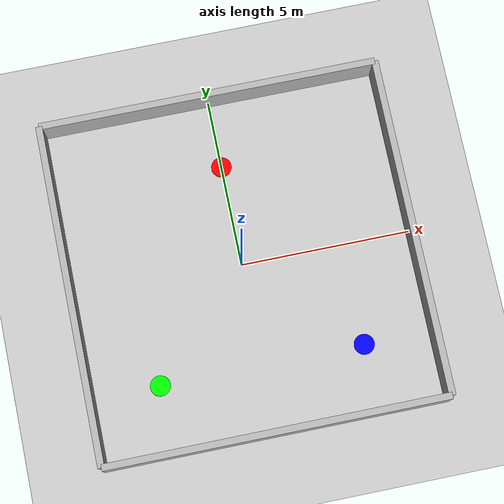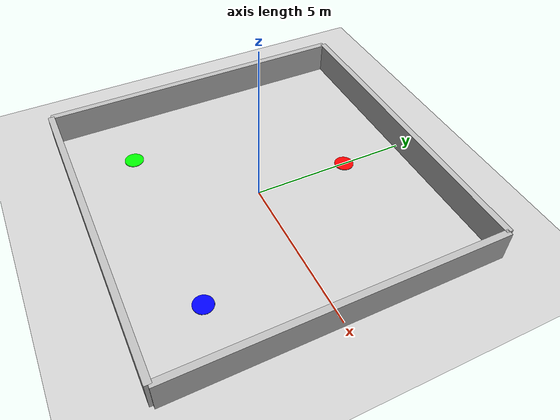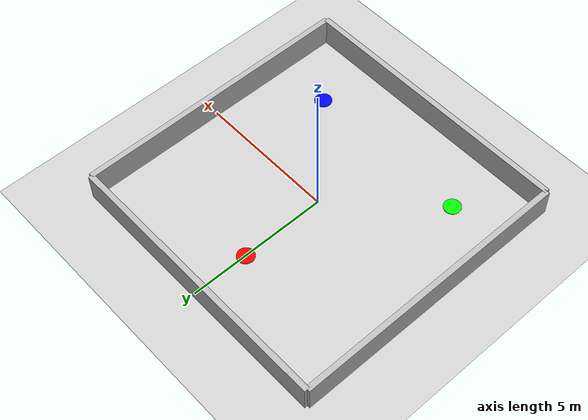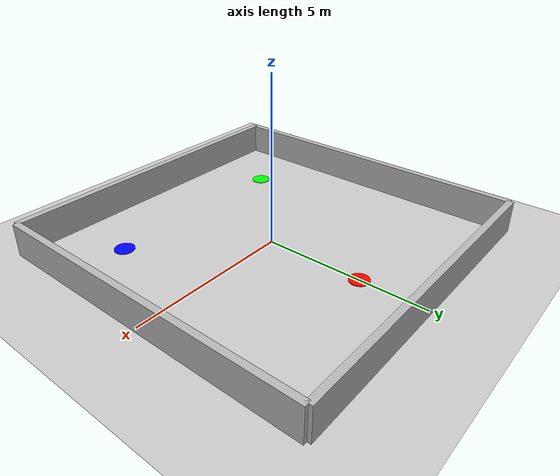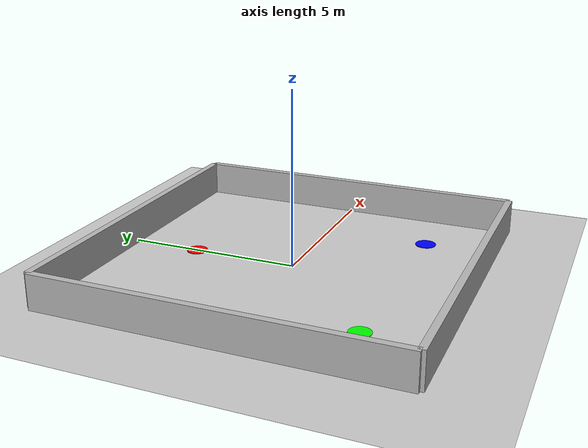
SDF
<?xml version="1.0" ?>
<sdf version="1.6">
  <world name="delivery_world">

    <!-- LIGHT -->
    <include>
      <uri>model://sun</uri>
    </include>

    <!-- GROUND -->
    <include>
      <uri>model://ground_plane</uri>
    </include>

    <!-- FENCE / SQUARE WALL -->

    <!-- WALL FRONT -->
    <model name="wall_front">
      <static>true</static>
      <pose>0 5 0.5 0 0 0</pose>
      <link name="link">
        <collision name="collision">
          <geometry>
            <box><size>10 0.2 1</size></box>
          </geometry>
        </collision>
        <visual name="visual">
          <geometry>
            <box><size>10 0.2 1</size></box>
          </geometry>
        </visual>
      </link>
    </model>

    <!-- WALL BACK -->
    <model name="wall_back">
      <static>true</static>
      <pose>0 -5 0.5 0 0 0</pose>
      <link name="link">
        <collision name="collision">
          <geometry>
            <box><size>10 0.2 1</size></box>
          </geometry>
        </collision>
        <visual name="visual">
          <geometry>
            <box><size>10 0.2 1</size></box>
          </geometry>
        </visual>
      </link>
    </model>

    <!-- WALL LEFT -->
    <model name="wall_left">
      <static>true</static>
      <pose>-5 0 0.5 0 0 1.57</pose>
      <link name="link">
        <collision name="collision">
          <geometry>
            <box><size>10 0.2 1</size></box>
          </geometry>
        </collision>
        <visual name="visual">
          <geometry>
            <box><size>10 0.2 1</size></box>
          </geometry>
        </visual>
      </link>
    </model>

    <!-- WALL RIGHT -->
    <model name="wall_right">
      <static>true</static>
      <pose>5 0 0.5 0 0 1.57</pose>
      <link name="link">
        <collision name="collision">
          <geometry>
            <box><size>10 0.2 1</size></box>
          </geometry>
        </collision>
        <visual name="visual">
          <geometry>
            <box><size>10 0.2 1</size></box>
          </geometry>
        </visual>
      </link>
    </model>

    <!-- DELIVERY STATES -->

    <!-- STATE A -->
    <model name="state_A">
      <static>true</static>
      <pose>-3 -3 0.01 0 0 0</pose>
      <link name="link">
        <visual name="visual">
          <geometry>
            <cylinder>
              <radius>0.3</radius>
              <length>0.02</length>
            </cylinder>
          </geometry>
          <material>
            <ambient>0 1 0 1</ambient>
          </material>
        </visual>
      </link>
    </model>

    <!-- STATE B -->
    <model name="state_B">
      <static>true</static>
      <pose>3 -3 0.01 0 0 0</pose>
      <link name="link">
        <visual name="visual">
          <geometry>
            <cylinder>
              <radius>0.3</radius>
              <length>0.02</length>
            </cylinder>
          </geometry>
          <material>
            <ambient>0 0 1 1</ambient>
          </material>
        </visual>
      </link>
    </model>

    <!-- STATE C -->
    <model name="state_C">
      <static>true</static>
      <pose>0 3 0.01 0 0 0</pose>
      <link name="link">
        <visual name="visual">
          <geometry>
            <cylinder>
              <radius>0.3</radius>
              <length>0.02</length>
            </cylinder>
          </geometry>
          <material>
            <ambient>1 0 0 1</ambient>
          </material>
        </visual>
      </link>
    </model>

  </world>
</sdf>
